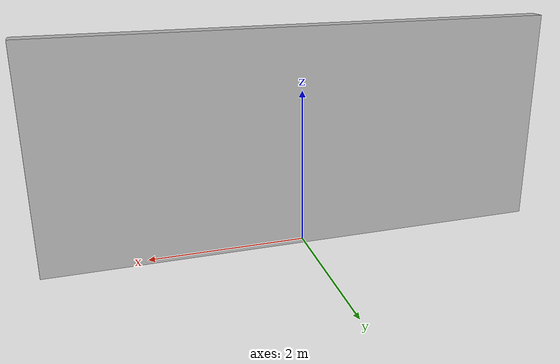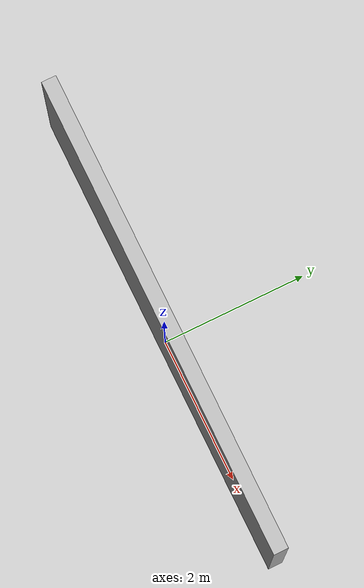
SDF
<?xml version="1.0" ?>
<sdf version="1.4">
  <model name="center_wall">
    <static>true</static>
    <link name="link">
      <pose>0 0 1.4 0 0 0</pose>
      <collision name="collision">
        <geometry>
          <box>
            <size>6.5 0.2 2.8</size>
          </box>
        </geometry>
      </collision>
      <visual name="visual">
        <cast_shadows>false</cast_shadows>
        <geometry>
          <box>
            <size>6.5 0.2 2.8</size>
          </box>
        </geometry>
        <material>
          <script>
            <uri>model://center_wall/materials/scripts</uri>
            <uri>model://center_wall/materials/textures</uri>
            <name>vrc/center_wall_design</name>
          </script>
        </material>
      </visual>
    </link>
  </model>
</sdf>
